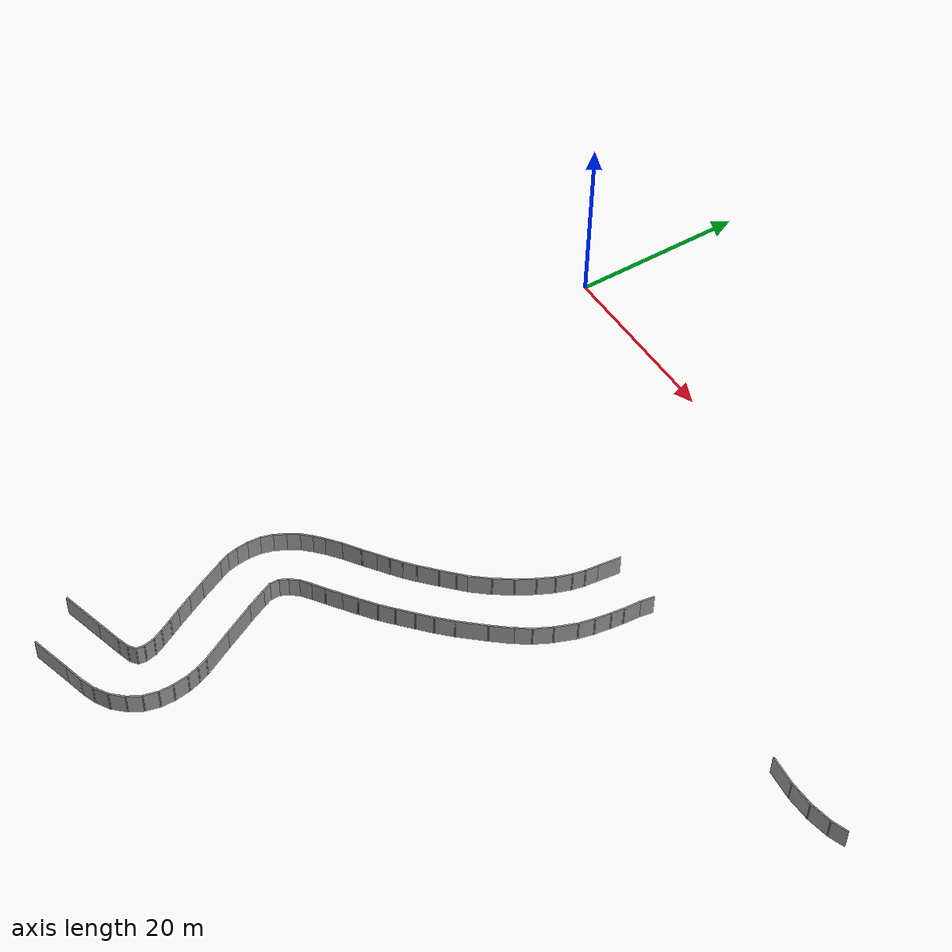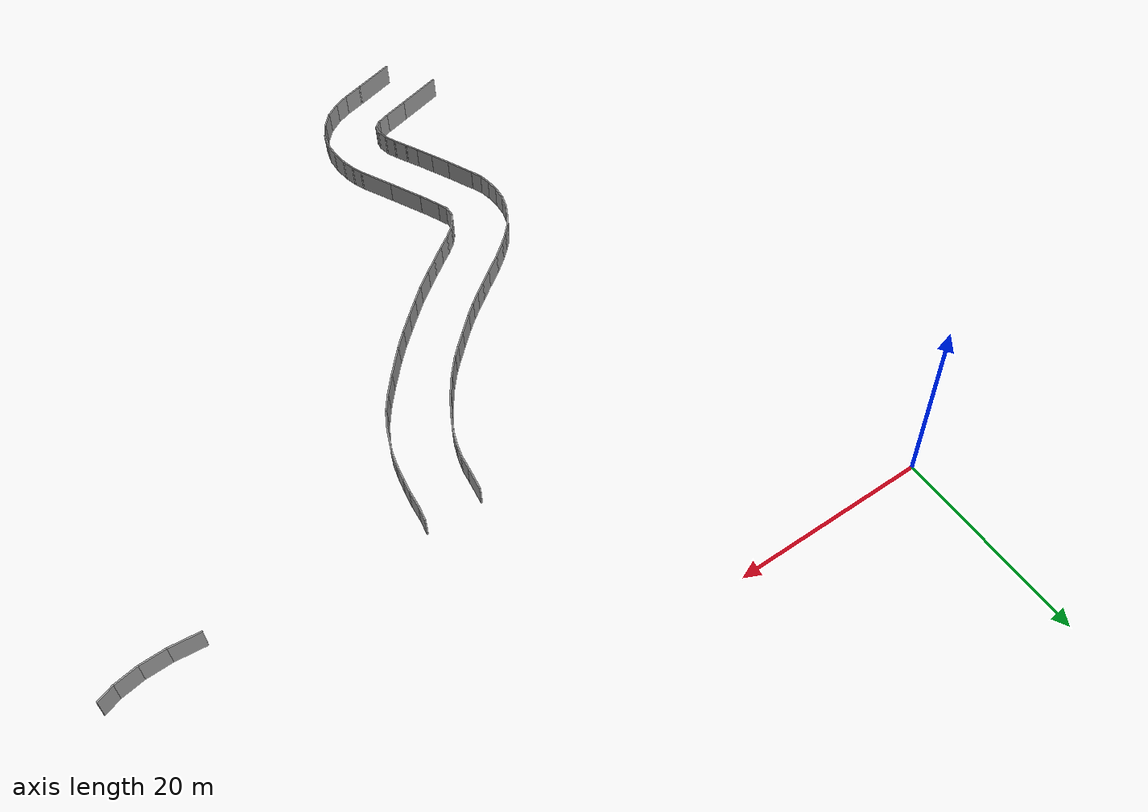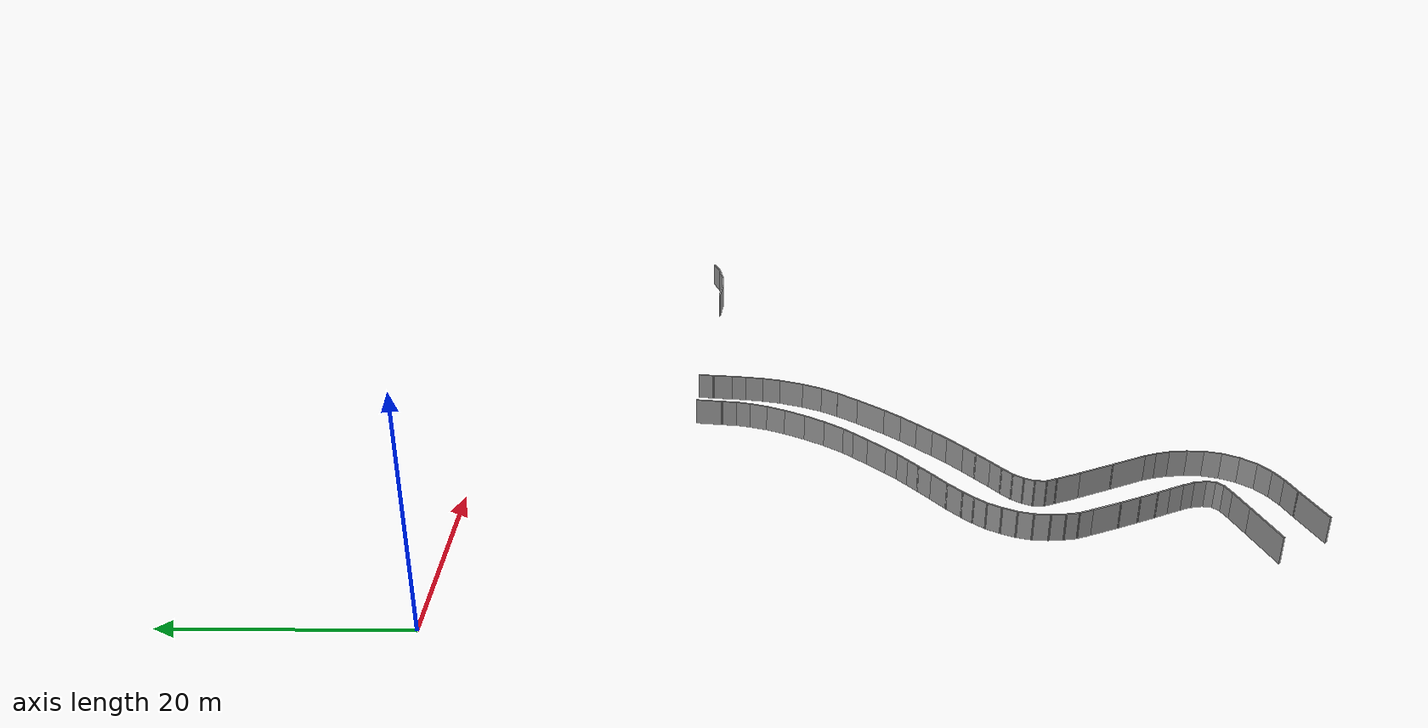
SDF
<sdf version="1.6">
 <model name="pista_l">
  <pose>-4.26084 -21.2973 0 0 -0 0</pose>
  <link name="Wall_100">
   <collision name="Wall_100_Collision">
    <geometry><box><size>2.40835 0.15 2.5</size></box></geometry>
    <pose>0 0 1.25 0 -0 0</pose>
   </collision>
   <visual name="Wall_100_Visual">
    <pose>0 0 1.25 0 -0 0</pose>
    <geometry><box><size>2.40835 0.15 2.5</size></box></geometry>
    <material>
     <script><uri>file://media/materials/scripts/gazebo.material</uri><name>Gazebo/Grey</name></script>
     <ambient>1 1 1 1</ambient>
    </material>
    <meta><layer>0</layer></meta>
   </visual>
   <pose>29.8719 -15.2686 0 0 0 -2.38952</pose>
  </link>
  <link name="Wall_101">
   <collision name="Wall_101_Collision">
    <geometry><box><size>1.62145 0.15 2.5</size></box></geometry>
    <pose>0 0 1.25 0 -0 0</pose>
   </collision>
   <visual name="Wall_101_Visual">
    <pose>0 0 1.25 0 -0 0</pose>
    <geometry><box><size>1.62145 0.15 2.5</size></box></geometry>
    <material>
     <script><uri>file://media/materials/scripts/gazebo.material</uri><name>Gazebo/Grey</name></script>
     <ambient>1 1 1 1</ambient>
    </material>
    <meta><layer>0</layer></meta>
   </visual>
   <pose>28.4887 -16.5188 0 0 0 -2.43297</pose>
  </link>
  <link name="Wall_102">
   <collision name="Wall_102_Collision">
    <geometry><box><size>1.49614 0.15 2.5</size></box></geometry>
    <pose>0 0 1.25 0 -0 0</pose>
   </collision>
   <visual name="Wall_102_Visual">
    <pose>0 0 1.25 0 -0 0</pose>
    <geometry><box><size>1.49614 0.15 2.5</size></box></geometry>
    <material>
     <script><uri>file://media/materials/scripts/gazebo.material</uri><name>Gazebo/Grey</name></script>
     <ambient>1 1 1 1</ambient>
    </material>
    <meta><layer>0</layer></meta>
   </visual>
   <pose>27.3981 -17.4099 0 0 0 -2.48228</pose>
  </link>
  <link name="Wall_103">
   <collision name="Wall_103_Collision">
    <geometry><box><size>1.53857 0.15 2.5</size></box></geometry>
    <pose>0 0 1.25 0 -0 0</pose>
   </collision>
   <visual name="Wall_103_Visual">
    <pose>0 0 1.25 0 -0 0</pose>
    <geometry><box><size>1.53857 0.15 2.5</size></box></geometry>
    <material>
     <script><uri>file://media/materials/scripts/gazebo.material</uri><name>Gazebo/Grey</name></script>
     <ambient>1 1 1 1</ambient>
    </material>
    <meta><layer>0</layer></meta>
   </visual>
   <pose>26.3075 -18.2345 0 0 0 -2.50575</pose>
  </link>
  <link name="Wall_104">
   <collision name="Wall_104_Collision">
    <geometry><box><size>1.80457 0.15 2.5</size></box></geometry>
    <pose>0 0 1.25 0 -0 0</pose>
   </collision>
   <visual name="Wall_104_Visual">
    <pose>0 0 1.25 0 -0 0</pose>
    <geometry><box><size>1.80457 0.15 2.5</size></box></geometry>
    <material>
     <script><uri>file://media/materials/scripts/gazebo.material</uri><name>Gazebo/Grey</name></script>
     <ambient>1 1 1 1</ambient>
    </material>
    <meta><layer>0</layer></meta>
   </visual>
   <pose>25.0839 -19.1389 0 0 0 -2.50452</pose>
  </link>
  <link name="Wall_105">
   <collision name="Wall_105_Collision">
    <geometry><box><size>2.23111 0.15 2.5</size></box></geometry>
    <pose>0 0 1.25 0 -0 0</pose>
   </collision>
   <visual name="Wall_105_Visual">
    <pose>0 0 1.25 0 -0 0</pose>
    <geometry><box><size>2.23111 0.15 2.5</size></box></geometry>
    <material>
     <script><uri>file://media/materials/scripts/gazebo.material</uri><name>Gazebo/Grey</name></script>
     <ambient>1 1 1 1</ambient>
    </material>
    <meta><layer>0</layer></meta>
   </visual>
   <pose>23.5677 -20.2295 0 0 0 -2.52877</pose>
  </link>
  <link name="Wall_106">
   <collision name="Wall_106_Collision">
    <geometry><box><size>1.96545 0.15 2.5</size></box></geometry>
    <pose>0 0 1.25 0 -0 0</pose>
   </collision>
   <visual name="Wall_106_Visual">
    <pose>0 0 1.25 0 -0 0</pose>
    <geometry><box><size>1.96545 0.15 2.5</size></box></geometry>
    <material>
     <script><uri>file://media/materials/scripts/gazebo.material</uri><name>Gazebo/Grey</name></script>
     <ambient>1 1 1 1</ambient>
    </material>
    <meta><layer>0</layer></meta>
   </visual>
   <pose>22.0116 -21.4 0 0 0 -2.45999</pose>
  </link>
  <link name="Wall_107">
   <collision name="Wall_107_Collision">
    <geometry><box><size>1.41148 0.15 2.5</size></box></geometry>
    <pose>0 0 1.25 0 -0 0</pose>
   </collision>
   <visual name="Wall_107_Visual">
    <pose>0 0 1.25 0 -0 0</pose>
    <geometry><box><size>1.41148 0.15 2.5</size></box></geometry>
    <material>
     <script><uri>file://media/materials/scripts/gazebo.material</uri><name>Gazebo/Grey</name></script>
     <ambient>1 1 1 1</ambient>
    </material>
    <meta><layer>0</layer></meta>
   </visual>
   <pose>20.8412 -22.3975 0 0 0 -2.40094</pose>
  </link>
  <link name="Wall_108">
   <collision name="Wall_108_Collision">
    <geometry><box><size>1.46718 0.15 2.5</size></box></geometry>
    <pose>0 0 1.25 0 -0 0</pose>
   </collision>
   <visual name="Wall_108_Visual">
    <pose>0 0 1.25 0 -0 0</pose>
    <geometry><box><size>1.46718 0.15 2.5</size></box></geometry>
    <material>
     <script><uri>file://media/materials/scripts/gazebo.material</uri><name>Gazebo/Grey</name></script>
     <ambient>1 1 1 1</ambient>
    </material>
    <meta><layer>0</layer></meta>
   </visual>
   <pose>19.9235 -23.3019 0 0 0 -2.32763</pose>
  </link>
  <link name="Wall_109">
   <collision name="Wall_109_Collision">
    <geometry><box><size>1.51493 0.15 2.5</size></box></geometry>
    <pose>0 0 1.25 0 -0 0</pose>
   </collision>
   <visual name="Wall_109_Visual">
    <pose>0 0 1.25 0 -0 0</pose>
    <geometry><box><size>1.51493 0.15 2.5</size></box></geometry>
    <material>
     <script><uri>file://media/materials/scripts/gazebo.material</uri><name>Gazebo/Grey</name></script>
     <ambient>1 1 1 1</ambient>
    </material>
    <meta><layer>0</layer></meta>
   </visual>
   <pose>19.0989 -24.3526 0 0 0 -2.14799</pose>
  </link>
  <link name="Wall_110">
   <collision name="Wall_110_Collision">
    <geometry><box><size>1.4943 0.15 2.5</size></box></geometry>
    <pose>0 0 1.25 0 -0 0</pose>
   </collision>
   <visual name="Wall_110_Visual">
    <pose>0 0 1.25 0 -0 0</pose>
    <geometry><box><size>1.4943 0.15 2.5</size></box></geometry>
    <material>
     <script><uri>file://media/materials/scripts/gazebo.material</uri><name>Gazebo/Grey</name></script>
     <ambient>1 1 1 1</ambient>
    </material>
    <meta><layer>0</layer></meta>
   </visual>
   <pose>18.4205 -25.523 0 0 0 -2.04329</pose>
  </link>
  <link name="Wall_111">
   <collision name="Wall_111_Collision">
    <geometry><box><size>1.48001 0.15 2.5</size></box></geometry>
    <pose>0 0 1.25 0 -0 0</pose>
   </collision>
   <visual name="Wall_111_Visual">
    <pose>0 0 1.25 0 -0 0</pose>
    <geometry><box><size>1.48001 0.15 2.5</size></box></geometry>
    <material>
     <script><uri>file://media/materials/scripts/gazebo.material</uri><name>Gazebo/Grey</name></script>
     <ambient>1 1 1 1</ambient>
    </material>
    <meta><layer>0</layer></meta>
   </visual>
   <pose>17.9284 -26.7599 0 0 0 -1.85459</pose>
  </link>
  <link name="Wall_112">
   <collision name="Wall_112_Collision">
    <geometry><box><size>1.5373 0.15 2.5</size></box></geometry>
    <pose>0 0 1.25 0 -0 0</pose>
   </collision>
   <visual name="Wall_112_Visual">
    <pose>0 0 1.25 0 -0 0</pose>
    <geometry><box><size>1.5373 0.15 2.5</size></box></geometry>
    <material>
     <script><uri>file://media/materials/scripts/gazebo.material</uri><name>Gazebo/Grey</name></script>
     <ambient>1 1 1 1</ambient>
    </material>
    <meta><layer>0</layer></meta>
   </visual>
   <pose>17.689 -28.0899 0 0 0 -1.64757</pose>
  </link>
  <link name="Wall_113">
   <collision name="Wall_113_Collision">
    <geometry><box><size>1.43124 0.15 2.5</size></box></geometry>
    <pose>0 0 1.25 0 -0 0</pose>
   </collision>
   <visual name="Wall_113_Visual">
    <pose>0 0 1.25 0 -0 0</pose>
    <geometry><box><size>1.43124 0.15 2.5</size></box></geometry>
    <material>
     <script><uri>file://media/materials/scripts/gazebo.material</uri><name>Gazebo/Grey</name></script>
     <ambient>1 1 1 1</ambient>
    </material>
    <meta><layer>0</layer></meta>
   </visual>
   <pose>17.689 -29.4199 0 0 0 -1.48765</pose>
  </link>
  <link name="Wall_114">
   <collision name="Wall_114_Collision">
    <geometry><box><size>1.31344 0.15 2.5</size></box></geometry>
    <pose>0 0 1.25 0 -0 0</pose>
   </collision>
   <visual name="Wall_114_Visual">
    <pose>0 0 1.25 0 -0 0</pose>
    <geometry><box><size>1.31344 0.15 2.5</size></box></geometry>
    <material>
     <script><uri>file://media/materials/scripts/gazebo.material</uri><name>Gazebo/Grey</name></script>
     <ambient>1 1 1 1</ambient>
    </material>
    <meta><layer>0</layer></meta>
   </visual>
   <pose>17.8486 -30.6302 0 0 0 -1.38685</pose>
  </link>
  <link name="Wall_115">
   <collision name="Wall_115_Collision">
    <geometry><box><size>1.41456 0.15 2.5</size></box></geometry>
    <pose>0 0 1.25 0 -0 0</pose>
   </collision>
   <visual name="Wall_115_Visual">
    <pose>0 0 1.25 0 -0 0</pose>
    <geometry><box><size>1.41456 0.15 2.5</size></box></geometry>
    <material>
     <script><uri>file://media/materials/scripts/gazebo.material</uri><name>Gazebo/Grey</name></script>
     <ambient>1 1 1 1</ambient>
    </material>
    <meta><layer>0</layer></meta>
   </visual>
   <pose>18.1944 -31.7873 0 0 0 -1.18248</pose>
  </link>
  <link name="Wall_117">
   <collision name="Wall_117_Collision">
    <geometry><box><size>2.62611 0.15 2.5</size></box></geometry>
    <pose>0 0 1.25 0 -0 0</pose>
   </collision>
   <visual name="Wall_117_Visual">
    <pose>0 0 1.25 0 -0 0</pose>
    <geometry><box><size>2.62611 0.15 2.5</size></box></geometry>
    <material>
     <script><uri>file://media/materials/scripts/gazebo.material</uri><name>Gazebo/Grey</name></script>
     <ambient>1 1 1 1</ambient>
    </material>
    <meta><layer>0</layer></meta>
   </visual>
   <pose>39.6475 -13.114 0 0 0 -2.25728</pose>
  </link>
  <link name="Wall_118">
   <collision name="Wall_118_Collision">
    <geometry><box><size>3.37302 0.15 2.5</size></box></geometry>
    <pose>0 0 1.25 0 -0 0</pose>
   </collision>
   <visual name="Wall_118_Visual">
    <pose>0 0 1.25 0 -0 0</pose>
    <geometry><box><size>3.37302 0.15 2.5</size></box></geometry>
    <material>
     <script><uri>file://media/materials/scripts/gazebo.material</uri><name>Gazebo/Grey</name></script>
     <ambient>1 1 1 1</ambient>
    </material>
    <meta><layer>0</layer></meta>
   </visual>
   <pose>37.7988 -15.2819 0 0 0 -2.29196</pose>
  </link>
  <link name="Wall_119">
   <collision name="Wall_119_Collision">
    <geometry><box><size>2.20029 0.15 2.5</size></box></geometry>
    <pose>0 0 1.25 0 -0 0</pose>
   </collision>
   <visual name="Wall_119_Visual">
    <pose>0 0 1.25 0 -0 0</pose>
    <geometry><box><size>2.20029 0.15 2.5</size></box></geometry>
    <material>
     <script><uri>file://media/materials/scripts/gazebo.material</uri><name>Gazebo/Grey</name></script>
     <ambient>1 1 1 1</ambient>
    </material>
    <meta><layer>0</layer></meta>
   </visual>
   <pose>36.0166 -17.2237 0 0 0 -2.34702</pose>
  </link>
  <link name="Wall_120">
   <collision name="Wall_120_Collision">
    <geometry><box><size>2.1076 0.15 2.5</size></box></geometry>
    <pose>0 0 1.25 0 -0 0</pose>
   </collision>
   <visual name="Wall_120_Visual">
    <pose>0 0 1.25 0 -0 0</pose>
    <geometry><box><size>2.1076 0.15 2.5</size></box></geometry>
    <material>
     <script><uri>file://media/materials/scripts/gazebo.material</uri><name>Gazebo/Grey</name></script>
     <ambient>1 1 1 1</ambient>
    </material>
    <meta><layer>0</layer></meta>
   </visual>
   <pose>34.5802 -18.6202 0 0 0 -2.39464</pose>
  </link>
  <link name="Wall_121">
   <collision name="Wall_121_Collision">
    <geometry><box><size>2.1272 0.15 2.5</size></box></geometry>
    <pose>0 0 1.25 0 -0 0</pose>
   </collision>
   <visual name="Wall_121_Visual">
    <pose>0 0 1.25 0 -0 0</pose>
    <geometry><box><size>2.1272 0.15 2.5</size></box></geometry>
    <material>
     <script><uri>file://media/materials/scripts/gazebo.material</uri><name>Gazebo/Grey</name></script>
     <ambient>1 1 1 1</ambient>
    </material>
    <meta><layer>0</layer></meta>
   </visual>
   <pose>33.1305 -19.9502 0 0 0 -2.40378</pose>
  </link>
  <link name="Wall_122">
   <collision name="Wall_122_Collision">
    <geometry><box><size>1.92166 0.15 2.5</size></box></geometry>
    <pose>0 0 1.25 0 -0 0</pose>
   </collision>
   <visual name="Wall_122_Visual">
    <pose>0 0 1.25 0 -0 0</pose>
    <geometry><box><size>1.92166 0.15 2.5</size></box></geometry>
    <material>
     <script><uri>file://media/materials/scripts/gazebo.material</uri><name>Gazebo/Grey</name></script>
     <ambient>1 1 1 1</ambient>
    </material>
    <meta><layer>0</layer></meta>
   </visual>
   <pose>31.7339 -21.2005 0 0 0 -2.41994</pose>
  </link>
  <link name="Wall_123">
   <collision name="Wall_123_Collision">
    <geometry><box><size>2.2357 0.15 2.5</size></box></geometry>
    <pose>0 0 1.25 0 -0 0</pose>
   </collision>
   <visual name="Wall_123_Visual">
    <pose>0 0 1.25 0 -0 0</pose>
    <geometry><box><size>2.2357 0.15 2.5</size></box></geometry>
    <material>
     <script><uri>file://media/materials/scripts/gazebo.material</uri><name>Gazebo/Grey</name></script>
     <ambient>1 1 1 1</ambient>
    </material>
    <meta><layer>0</layer></meta>
   </visual>
   <pose>30.2443 -22.4241 0 0 0 -2.48279</pose>
  </link>
  <link name="Wall_124">
   <collision name="Wall_124_Collision">
    <geometry><box><size>1.76737 0.15 2.5</size></box></geometry>
    <pose>0 0 1.25 0 -0 0</pose>
   </collision>
   <visual name="Wall_124_Visual">
    <pose>0 0 1.25 0 -0 0</pose>
    <geometry><box><size>1.76737 0.15 2.5</size></box></geometry>
    <material>
     <script><uri>file://media/materials/scripts/gazebo.material</uri><name>Gazebo/Grey</name></script>
     <ambient>1 1 1 1</ambient>
    </material>
    <meta><layer>0</layer></meta>
   </visual>
   <pose>28.768 -23.5413 0 0 0 -2.50796</pose>
  </link>
  <link name="Wall_125">
   <collision name="Wall_125_Collision">
    <geometry><box><size>1.97478 0.15 2.5</size></box></geometry>
    <pose>0 0 1.25 0 -0 0</pose>
   </collision>
   <visual name="Wall_125_Visual">
    <pose>0 0 1.25 0 -0 0</pose>
    <geometry><box><size>1.97478 0.15 2.5</size></box></geometry>
    <material>
     <script><uri>file://media/materials/scripts/gazebo.material</uri><name>Gazebo/Grey</name></script>
     <ambient>1 1 1 1</ambient>
    </material>
    <meta><layer>0</layer></meta>
   </visual>
   <pose>27.3848 -24.5654 0 0 0 -2.50101</pose>
  </link>
  <link name="Wall_126">
   <collision name="Wall_126_Collision">
    <geometry><box><size>1.60355 0.15 2.5</size></box></geometry>
    <pose>0 0 1.25 0 -0 0</pose>
   </collision>
   <visual name="Wall_126_Visual">
    <pose>0 0 1.25 0 -0 0</pose>
    <geometry><box><size>1.60355 0.15 2.5</size></box></geometry>
    <material>
     <script><uri>file://media/materials/scripts/gazebo.material</uri><name>Gazebo/Grey</name></script>
     <ambient>1 1 1 1</ambient>
    </material>
    <meta><layer>0</layer></meta>
   </visual>
   <pose>26.0548 -25.523 0 0 0 -2.53836</pose>
  </link>
  <link name="Wall_127">
   <collision name="Wall_127_Collision">
    <geometry><box><size>1.43785 0.15 2.5</size></box></geometry>
    <pose>0 0 1.25 0 -0 0</pose>
   </collision>
   <visual name="Wall_127_Visual">
    <pose>0 0 1.25 0 -0 0</pose>
    <geometry><box><size>1.43785 0.15 2.5</size></box></geometry>
    <material>
     <script><uri>file://media/materials/scripts/gazebo.material</uri><name>Gazebo/Grey</name></script>
     <ambient>1 1 1 1</ambient>
    </material>
    <meta><layer>0</layer></meta>
   </visual>
   <pose>24.9509 -26.3343 0 0 0 -2.4733</pose>
  </link>
  <link name="Wall_128">
   <collision name="Wall_128_Collision">
    <geometry><box><size>1.24675 0.15 2.5</size></box></geometry>
    <pose>0 0 1.25 0 -0 0</pose>
   </collision>
   <visual name="Wall_128_Visual">
    <pose>0 0 1.25 0 -0 0</pose>
    <geometry><box><size>1.24675 0.15 2.5</size></box></geometry>
    <material>
     <script><uri>file://media/materials/scripts/gazebo.material</uri><name>Gazebo/Grey</name></script>
     <ambient>1 1 1 1</ambient>
    </material>
    <meta><layer>0</layer></meta>
   </visual>
   <pose>24.0997 -27.1589 0 0 0 -2.25311</pose>
  </link>
  <link name="Wall_129">
   <collision name="Wall_129_Collision">
    <geometry><box><size>1.10168 0.15 2.5</size></box></geometry>
    <pose>0 0 1.25 0 -0 0</pose>
   </collision>
   <visual name="Wall_129_Visual">
    <pose>0 0 1.25 0 -0 0</pose>
    <geometry><box><size>1.10168 0.15 2.5</size></box></geometry>
    <material>
     <script><uri>file://media/materials/scripts/gazebo.material</uri><name>Gazebo/Grey</name></script>
     <ambient>1 1 1 1</ambient>
    </material>
    <meta><layer>0</layer></meta>
   </visual>
   <pose>23.5411 -28.0101 0 0 0 -2.03444</pose>
  </link>
  <link name="Wall_130">
   <collision name="Wall_130_Collision">
    <geometry><box><size>1.16116 0.15 2.5</size></box></geometry>
    <pose>0 0 1.25 0 -0 0</pose>
   </collision>
   <visual name="Wall_130_Visual">
    <pose>0 0 1.25 0 -0 0</pose>
    <geometry><box><size>1.16116 0.15 2.5</size></box></geometry>
    <material>
     <script><uri>file://media/materials/scripts/gazebo.material</uri><name>Gazebo/Grey</name></script>
     <ambient>1 1 1 1</ambient>
    </material>
    <meta><layer>0</layer></meta>
   </visual>
   <pose>23.315 -28.9411 0 0 0 -1.59711</pose>
  </link>
  <link name="Wall_131">
   <collision name="Wall_131_Collision">
    <geometry><box><size>1.16291 0.15 2.5</size></box></geometry>
    <pose>0 0 1.25 0 -0 0</pose>
   </collision>
   <visual name="Wall_131_Visual">
    <pose>0 0 1.25 0 -0 0</pose>
    <geometry><box><size>1.16291 0.15 2.5</size></box></geometry>
    <material>
     <script><uri>file://media/materials/scripts/gazebo.material</uri><name>Gazebo/Grey</name></script>
     <ambient>1 1 1 1</ambient>
    </material>
    <meta><layer>0</layer></meta>
   </visual>
   <pose>23.5012 -29.912 0 0 0 -1.1659</pose>
  </link>
  <link name="Wall_132">
   <collision name="Wall_132_Collision">
    <geometry><box><size>2.50783 0.15 2.5</size></box></geometry>
    <pose>0 0 1.25 0 -0 0</pose>
   </collision>
   <visual name="Wall_132_Visual">
    <pose>0 0 1.25 0 -0 0</pose>
    <geometry><box><size>2.50783 0.15 2.5</size></box></geometry>
    <material>
     <script><uri>file://media/materials/scripts/gazebo.material</uri><name>Gazebo/Grey</name></script>
     <ambient>1 1 1 1</ambient>
    </material>
    <meta><layer>0</layer></meta>
   </visual>
   <pose>24.1795 -31.4548 0 0 0 -1.15257</pose>
  </link>
  <link name="Wall_134">
   <collision name="Wall_134_Collision">
    <geometry><box><size>3.0427 0.15 2.5</size></box></geometry>
    <pose>0 0 1.25 0 -0 0</pose>
   </collision>
   <visual name="Wall_134_Visual">
    <pose>0 0 1.25 0 -0 0</pose>
    <geometry><box><size>3.0427 0.15 2.5</size></box></geometry>
    <material>
     <script><uri>file://media/materials/scripts/gazebo.material</uri><name>Gazebo/Grey</name></script>
     <ambient>1 1 1 1</ambient>
    </material>
    <meta><layer>0</layer></meta>
   </visual>
   <pose>19.059 -33.6893 0 0 0 -1.14417</pose>
  </link>
  <link name="Wall_135">
   <collision name="Wall_135_Collision">
    <geometry><box><size>2.22004 0.15 2.5</size></box></geometry>
    <pose>0 0 1.25 0 -0 0</pose>
   </collision>
   <visual name="Wall_135_Visual">
    <pose>0 0 1.25 0 -0 0</pose>
    <geometry><box><size>2.22004 0.15 2.5</size></box></geometry>
    <material>
     <script><uri>file://media/materials/scripts/gazebo.material</uri><name>Gazebo/Grey</name></script>
     <ambient>1 1 1 1</ambient>
    </material>
    <meta><layer>0</layer></meta>
   </visual>
   <pose>20.1097 -35.937 0 0 0 -1.11864</pose>
  </link>
  <link name="Wall_136">
   <collision name="Wall_136_Collision">
    <geometry><box><size>2.0177 0.15 2.5</size></box></geometry>
    <pose>0 0 1.25 0 -0 0</pose>
   </collision>
   <visual name="Wall_136_Visual">
    <pose>0 0 1.25 0 -0 0</pose>
    <geometry><box><size>2.0177 0.15 2.5</size></box></geometry>
    <material>
     <script><uri>file://media/materials/scripts/gazebo.material</uri><name>Gazebo/Grey</name></script>
     <ambient>1 1 1 1</ambient>
    </material>
    <meta><layer>0</layer></meta>
   </visual>
   <pose>20.9742 -37.7059 0 0 0 -1.11352</pose>
  </link>
  <link name="Wall_137">
   <collision name="Wall_137_Collision">
    <geometry><box><size>1.53014 0.15 2.5</size></box></geometry>
    <pose>0 0 1.25 0 -0 0</pose>
   </collision>
   <visual name="Wall_137_Visual">
    <pose>0 0 1.25 0 -0 0</pose>
    <geometry><box><size>1.53014 0.15 2.5</size></box></geometry>
    <material>
     <script><uri>file://media/materials/scripts/gazebo.material</uri><name>Gazebo/Grey</name></script>
     <ambient>1 1 1 1</ambient>
    </material>
    <meta><layer>0</layer></meta>
   </visual>
   <pose>21.7057 -39.1556 0 0 0 -1.08991</pose>
  </link>
  <link name="Wall_138">
   <collision name="Wall_138_Collision">
    <geometry><box><size>1.61325 0.15 2.5</size></box></geometry>
    <pose>0 0 1.25 0 -0 0</pose>
   </collision>
   <visual name="Wall_138_Visual">
    <pose>0 0 1.25 0 -0 0</pose>
    <geometry><box><size>1.61325 0.15 2.5</size></box></geometry>
    <material>
     <script><uri>file://media/materials/scripts/gazebo.material</uri><name>Gazebo/Grey</name></script>
     <ambient>1 1 1 1</ambient>
    </material>
    <meta><layer>0</layer></meta>
   </visual>
   <pose>22.3574 -40.4191 0 0 0 -1.09902</pose>
  </link>
  <link name="Wall_139">
   <collision name="Wall_139_Collision">
    <geometry><box><size>1.31678 0.15 2.5</size></box></geometry>
    <pose>0 0 1.25 0 -0 0</pose>
   </collision>
   <visual name="Wall_139_Visual">
    <pose>0 0 1.25 0 -0 0</pose>
    <geometry><box><size>1.31678 0.15 2.5</size></box></geometry>
    <material>
     <script><uri>file://media/materials/scripts/gazebo.material</uri><name>Gazebo/Grey</name></script>
     <ambient>1 1 1 1</ambient>
    </material>
    <meta><layer>0</layer></meta>
   </visual>
   <pose>22.9293 -41.6028 0 0 0 -1.14794</pose>
  </link>
  <link name="Wall_140">
   <collision name="Wall_140_Collision">
    <geometry><box><size>1.2873 0.15 2.5</size></box></geometry>
    <pose>0 0 1.25 0 -0 0</pose>
   </collision>
   <visual name="Wall_140_Visual">
    <pose>0 0 1.25 0 -0 0</pose>
    <geometry><box><size>1.2873 0.15 2.5</size></box></geometry>
    <material>
     <script><uri>file://media/materials/scripts/gazebo.material</uri><name>Gazebo/Grey</name></script>
     <ambient>1 1 1 1</ambient>
    </material>
    <meta><layer>0</layer></meta>
   </visual>
   <pose>23.2751 -42.6934 0 0 0 -1.38258</pose>
  </link>
  <link name="Wall_141">
   <collision name="Wall_141_Collision">
    <geometry><box><size>0.959013 0.15 2.5</size></box></geometry>
    <pose>0 0 1.25 0 -0 0</pose>
   </collision>
   <visual name="Wall_141_Visual">
    <pose>0 0 1.25 0 -0 0</pose>
    <geometry><box><size>0.959013 0.15 2.5</size></box></geometry>
    <material>
     <script><uri>file://media/materials/scripts/gazebo.material</uri><name>Gazebo/Grey</name></script>
     <ambient>1 1 1 1</ambient>
    </material>
    <meta><layer>0</layer></meta>
   </visual>
   <pose>23.315 -43.651 0 0 0 -1.73595</pose>
  </link>
  <link name="Wall_142">
   <collision name="Wall_142_Collision">
    <geometry><box><size>1.00162 0.15 2.5</size></box></geometry>
    <pose>0 0 1.25 0 -0 0</pose>
   </collision>
   <visual name="Wall_142_Visual">
    <pose>0 0 1.25 0 -0 0</pose>
    <geometry><box><size>1.00162 0.15 2.5</size></box></geometry>
    <material>
     <script><uri>file://media/materials/scripts/gazebo.material</uri><name>Gazebo/Grey</name></script>
     <ambient>1 1 1 1</ambient>
    </material>
    <meta><layer>0</layer></meta>
   </visual>
   <pose>22.916 -44.316 0 0 0 -2.46685</pose>
  </link>
  <link name="Wall_143">
   <collision name="Wall_143_Collision">
    <geometry><box><size>1.41176 0.15 2.5</size></box></geometry>
    <pose>0 0 1.25 0 -0 0</pose>
   </collision>
   <visual name="Wall_143_Visual">
    <pose>0 0 1.25 0 -0 0</pose>
    <geometry><box><size>1.41176 0.15 2.5</size></box></geometry>
    <material>
     <script><uri>file://media/materials/scripts/gazebo.material</uri><name>Gazebo/Grey</name></script>
     <ambient>1 1 1 1</ambient>
    </material>
    <meta><layer>0</layer></meta>
   </visual>
   <pose>21.985 -44.7815 0 0 0 -2.81984</pose>
  </link>
  <link name="Wall_144">
   <collision name="Wall_144_Collision">
    <geometry><box><size>2.82831 0.15 2.5</size></box></geometry>
    <pose>0 0 1.25 0 -0 0</pose>
   </collision>
   <visual name="Wall_144_Visual">
    <pose>0 0 1.25 0 -0 0</pose>
    <geometry><box><size>2.82831 0.15 2.5</size></box></geometry>
    <material>
     <script><uri>file://media/materials/scripts/gazebo.material</uri><name>Gazebo/Grey</name></script>
     <ambient>1 1 1 1</ambient>
    </material>
    <meta><layer>0</layer></meta>
   </visual>
   <pose>20.0964 -45.3401 0 0 0 -2.87011</pose>
  </link>
  <link name="Wall_145">
   <collision name="Wall_145_Collision">
    <geometry><box><size>4.81604 0.15 2.5</size></box></geometry>
    <pose>0 0 1.25 0 -0 0</pose>
   </collision>
   <visual name="Wall_145_Visual">
    <pose>0 0 1.25 0 -0 0</pose>
    <geometry><box><size>4.81604 0.15 2.5</size></box></geometry>
    <material>
     <script><uri>file://media/materials/scripts/gazebo.material</uri><name>Gazebo/Grey</name></script>
     <ambient>1 1 1 1</ambient>
    </material>
    <meta><layer>0</layer></meta>
   </visual>
   <pose>16.5585 -46.3243 0 0 0 -2.87034</pose>
  </link>
  <link name="Wall_162">
   <collision name="Wall_162_Collision">
    <geometry><box><size>3.76645 0.15 2.5</size></box></geometry>
    <pose>0 0 1.25 0 -0 0</pose>
   </collision>
   <visual name="Wall_162_Visual">
    <pose>0 0 1.25 0 -0 0</pose>
    <geometry><box><size>3.76645 0.15 2.5</size></box></geometry>
    <material>
     <script><uri>file://media/materials/scripts/gazebo.material</uri><name>Gazebo/Grey</name></script>
     <ambient>1 1 1 1</ambient>
    </material>
    <meta><layer>0</layer></meta>
   </visual>
   <pose>25.4829 -34.1548 0 0 0 -1.11373</pose>
  </link>
  <link name="Wall_163">
   <collision name="Wall_163_Collision">
    <geometry><box><size>3.81398 0.15 2.5</size></box></geometry>
    <pose>0 0 1.25 0 -0 0</pose>
   </collision>
   <visual name="Wall_163_Visual">
    <pose>0 0 1.25 0 -0 0</pose>
    <geometry><box><size>3.81398 0.15 2.5</size></box></geometry>
    <material>
     <script><uri>file://media/materials/scripts/gazebo.material</uri><name>Gazebo/Grey</name></script>
     <ambient>1 1 1 1</ambient>
    </material>
    <meta><layer>0</layer></meta>
   </visual>
   <pose>27.1055 -37.4133 0 0 0 -1.1039</pose>
  </link>
  <link name="Wall_164">
   <collision name="Wall_164_Collision">
    <geometry><box><size>1.32071 0.15 2.5</size></box></geometry>
    <pose>0 0 1.25 0 -0 0</pose>
   </collision>
   <visual name="Wall_164_Visual">
    <pose>0 0 1.25 0 -0 0</pose>
    <geometry><box><size>1.32071 0.15 2.5</size></box></geometry>
    <material>
     <script><uri>file://media/materials/scripts/gazebo.material</uri><name>Gazebo/Grey</name></script>
     <ambient>1 1 1 1</ambient>
    </material>
    <meta><layer>0</layer></meta>
   </visual>
   <pose>28.1429 -39.5945 0 0 0 -1.19873</pose>
  </link>
  <link name="Wall_165">
   <collision name="Wall_165_Collision">
    <geometry><box><size>1.47281 0.15 2.5</size></box></geometry>
    <pose>0 0 1.25 0 -0 0</pose>
   </collision>
   <visual name="Wall_165_Visual">
    <pose>0 0 1.25 0 -0 0</pose>
    <geometry><box><size>1.47281 0.15 2.5</size></box></geometry>
    <material>
     <script><uri>file://media/materials/scripts/gazebo.material</uri><name>Gazebo/Grey</name></script>
     <ambient>1 1 1 1</ambient>
    </material>
    <meta><layer>0</layer></meta>
   </visual>
   <pose>28.5286 -40.7782 0 0 0 -1.30631</pose>
  </link>
  <link name="Wall_166">
   <collision name="Wall_166_Collision">
    <geometry><box><size>1.80969 0.15 2.5</size></box></geometry>
    <pose>0 0 1.25 0 -0 0</pose>
   </collision>
   <visual name="Wall_166_Visual">
    <pose>0 0 1.25 0 -0 0</pose>
    <geometry><box><size>1.80969 0.15 2.5</size></box></geometry>
    <material>
     <script><uri>file://media/materials/scripts/gazebo.material</uri><name>Gazebo/Grey</name></script>
     <ambient>1 1 1 1</ambient>
    </material>
    <meta><layer>0</layer></meta>
   </visual>
   <pose>28.7946 -42.2412 0 0 0 -1.45837</pose>
  </link>
  <link name="Wall_167">
   <collision name="Wall_167_Collision">
    <geometry><box><size>1.66714 0.15 2.5</size></box></geometry>
    <pose>0 0 1.25 0 -0 0</pose>
   </collision>
   <visual name="Wall_167_Visual">
    <pose>0 0 1.25 0 -0 0</pose>
    <geometry><box><size>1.66714 0.15 2.5</size></box></geometry>
    <material>
     <script><uri>file://media/materials/scripts/gazebo.material</uri><name>Gazebo/Grey</name></script>
     <ambient>1 1 1 1</ambient>
    </material>
    <meta><layer>0</layer></meta>
   </visual>
   <pose>28.8611 -43.8239 0 0 0 -1.60587</pose>
  </link>
  <link name="Wall_168">
   <collision name="Wall_168_Collision">
    <geometry><box><size>1.69212 0.15 2.5</size></box></geometry>
    <pose>0 0 1.25 0 -0 0</pose>
   </collision>
   <visual name="Wall_168_Visual">
    <pose>0 0 1.25 0 -0 0</pose>
    <geometry><box><size>1.69212 0.15 2.5</size></box></geometry>
    <material>
     <script><uri>file://media/materials/scripts/gazebo.material</uri><name>Gazebo/Grey</name></script>
     <ambient>1 1 1 1</ambient>
    </material>
    <meta><layer>0</layer></meta>
   </visual>
   <pose>28.635 -45.3268 0 0 0 -1.83251</pose>
  </link>
  <link name="Wall_169">
   <collision name="Wall_169_Collision">
    <geometry><box><size>1.73377 0.15 2.5</size></box></geometry>
    <pose>0 0 1.25 0 -0 0</pose>
   </collision>
   <visual name="Wall_169_Visual">
    <pose>0 0 1.25 0 -0 0</pose>
    <geometry><box><size>1.73377 0.15 2.5</size></box></geometry>
    <material>
     <script><uri>file://media/materials/scripts/gazebo.material</uri><name>Gazebo/Grey</name></script>
     <ambient>1 1 1 1</ambient>
    </material>
    <meta><layer>0</layer></meta>
   </visual>
   <pose>28.0498 -46.7632 0 0 0 -2.07953</pose>
  </link>
  <link name="Wall_170">
   <collision name="Wall_170_Collision">
    <geometry><box><size>1.82497 0.15 2.5</size></box></geometry>
    <pose>0 0 1.25 0 -0 0</pose>
   </collision>
   <visual name="Wall_170_Visual">
    <pose>0 0 1.25 0 -0 0</pose>
    <geometry><box><size>1.82497 0.15 2.5</size></box></geometry>
    <material>
     <script><uri>file://media/materials/scripts/gazebo.material</uri><name>Gazebo/Grey</name></script>
     <ambient>1 1 1 1</ambient>
    </material>
    <meta><layer>0</layer></meta>
   </visual>
   <pose>27.0922 -48.0667 0 0 0 -2.3225</pose>
  </link>
  <link name="Wall_171">
   <collision name="Wall_171_Collision">
    <geometry><box><size>1.81076 0.15 2.5</size></box></geometry>
    <pose>0 0 1.25 0 -0 0</pose>
   </collision>
   <visual name="Wall_171_Visual">
    <pose>0 0 1.25 0 -0 0</pose>
    <geometry><box><size>1.81076 0.15 2.5</size></box></geometry>
    <material>
     <script><uri>file://media/materials/scripts/gazebo.material</uri><name>Gazebo/Grey</name></script>
     <ambient>1 1 1 1</ambient>
    </material>
    <meta><layer>0</layer></meta>
   </visual>
   <pose>25.8154 -49.1174 0 0 0 -2.58469</pose>
  </link>
  <link name="Wall_172">
   <collision name="Wall_172_Collision">
    <geometry><box><size>1.71603 0.15 2.5</size></box></geometry>
    <pose>0 0 1.25 0 -0 0</pose>
   </collision>
   <visual name="Wall_172_Visual">
    <pose>0 0 1.25 0 -0 0</pose>
    <geometry><box><size>1.71603 0.15 2.5</size></box></geometry>
    <material>
     <script><uri>file://media/materials/scripts/gazebo.material</uri><name>Gazebo/Grey</name></script>
     <ambient>1 1 1 1</ambient>
    </material>
    <meta><layer>0</layer></meta>
   </visual>
   <pose>24.379 -49.8356 0 0 0 -2.77686</pose>
  </link>
  <link name="Wall_173">
   <collision name="Wall_173_Collision">
    <geometry><box><size>2.18904 0.15 2.5</size></box></geometry>
    <pose>0 0 1.25 0 -0 0</pose>
   </collision>
   <visual name="Wall_173_Visual">
    <pose>0 0 1.25 0 -0 0</pose>
    <geometry><box><size>2.18904 0.15 2.5</size></box></geometry>
    <material>
     <script><uri>file://media/materials/scripts/gazebo.material</uri><name>Gazebo/Grey</name></script>
     <ambient>1 1 1 1</ambient>
    </material>
    <meta><layer>0</layer></meta>
   </visual>
   <pose>22.6633 -50.3809 0 0 0 -2.87763</pose>
  </link>
  <link name="Wall_174">
   <collision name="Wall_174_Collision">
    <geometry><box><size>4.51997 0.15 2.5</size></box></geometry>
    <pose>0 0 1.25 0 -0 0</pose>
   </collision>
   <visual name="Wall_174_Visual">
    <pose>0 0 1.25 0 -0 0</pose>
    <geometry><box><size>4.51997 0.15 2.5</size></box></geometry>
    <material>
     <script><uri>file://media/materials/scripts/gazebo.material</uri><name>Gazebo/Grey</name></script>
     <ambient>1 1 1 1</ambient>
    </material>
    <meta><layer>0</layer></meta>
   </visual>
   <pose>19.5777 -51.2454 0 0 0 -2.86413</pose>
  </link>
  <link name="Wall_62">
   <collision name="Wall_62_Collision">
    <geometry><box><size>1.90904 0.15 2.5</size></box></geometry>
    <pose>0 0 1.25 0 -0 0</pose>
   </collision>
   <visual name="Wall_62_Visual">
    <pose>0 0 1.25 0 -0 0</pose>
    <geometry><box><size>1.90904 0.15 2.5</size></box></geometry>
    <material>
     <script><uri>file://media/materials/scripts/gazebo.material</uri><name>Gazebo/Grey</name></script>
     <ambient>1 1 1 1</ambient>
    </material>
    <meta><layer>0</layer></meta>
   </visual>
   <pose>74.3741 0.465405 0 0 0 -2.78636</pose>
  </link>
  <link name="Wall_63">
   <collision name="Wall_63_Collision">
    <geometry><box><size>2.58155 0.15 2.5</size></box></geometry>
    <pose>0 0 1.25 0 -0 0</pose>
   </collision>
   <visual name="Wall_63_Visual">
    <pose>0 0 1.25 0 -0 0</pose>
    <geometry><box><size>2.58155 0.15 2.5</size></box></geometry>
    <material>
     <script><uri>file://media/materials/scripts/gazebo.material</uri><name>Gazebo/Grey</name></script>
     <ambient>1 1 1 1</ambient>
    </material>
    <meta><layer>0</layer></meta>
   </visual>
   <pose>72.3525 -0.053299 0 0 0 -2.96565</pose>
  </link>
  <link name="Wall_64">
   <collision name="Wall_64_Collision">
    <geometry><box><size>2.78463 0.15 2.5</size></box></geometry>
    <pose>0 0 1.25 0 -0 0</pose>
   </collision>
   <visual name="Wall_64_Visual">
    <pose>0 0 1.25 0 -0 0</pose>
    <geometry><box><size>2.78463 0.15 2.5</size></box></geometry>
    <material>
     <script><uri>file://media/materials/scripts/gazebo.material</uri><name>Gazebo/Grey</name></script>
     <ambient>1 1 1 1</ambient>
    </material>
    <meta><layer>0</layer></meta>
   </visual>
   <pose>69.8387 -0.306002 0 0 0 -3.1113</pose>
  </link>
  <link name="Wall_65">
   <collision name="Wall_65_Collision">
    <geometry><box><size>3.22298 0.15 2.5</size></box></geometry>
    <pose>0 0 1.25 0 -0 0</pose>
   </collision>
   <visual name="Wall_65_Visual">
    <pose>0 0 1.25 0 -0 0</pose>
    <geometry><box><size>3.22298 0.15 2.5</size></box></geometry>
    <material>
     <script><uri>file://media/materials/scripts/gazebo.material</uri><name>Gazebo/Grey</name></script>
     <ambient>1 1 1 1</ambient>
    </material>
    <meta><layer>0</layer></meta>
   </visual>
   <pose>66.9925 -0.1996 0 0 -0 3.04623</pose>
  </link>
  <link name="Wall_75">
   <collision name="Wall_75_Collision">
    <geometry><box><size>2.59157 0.15 2.5</size></box></geometry>
    <pose>0 0 1.25 0 -0 0</pose>
   </collision>
   <visual name="Wall_75_Visual">
    <pose>0 0 1.25 0 -0 0</pose>
    <geometry><box><size>2.59157 0.15 2.5</size></box></geometry>
    <material>
     <script><uri>file://media/materials/scripts/gazebo.material</uri><name>Gazebo/Grey</name></script>
     <ambient>1 1 1 1</ambient>
    </material>
    <meta><layer>0</layer></meta>
   </visual>
   <pose>38.65 0.226004 0 0 0 -1.70191</pose>
  </link>
  <link name="Wall_76">
   <collision name="Wall_76_Collision">
    <geometry><box><size>1.56882 0.15 2.5</size></box></geometry>
    <pose>0 0 1.25 0 -0 0</pose>
   </collision>
   <visual name="Wall_76_Visual">
    <pose>0 0 1.25 0 -0 0</pose>
    <geometry><box><size>1.56882 0.15 2.5</size></box></geometry>
    <material>
     <script><uri>file://media/materials/scripts/gazebo.material</uri><name>Gazebo/Grey</name></script>
     <ambient>1 1 1 1</ambient>
    </material>
    <meta><layer>0</layer></meta>
   </visual>
   <pose>38.4106 -1.68921 0 0 0 -1.68352</pose>
  </link>
  <link name="Wall_77">
   <collision name="Wall_77_Collision">
    <geometry><box><size>1.49193 0.15 2.5</size></box></geometry>
    <pose>0 0 1.25 0 -0 0</pose>
   </collision>
   <visual name="Wall_77_Visual">
    <pose>0 0 1.25 0 -0 0</pose>
    <geometry><box><size>1.49193 0.15 2.5</size></box></geometry>
    <material>
     <script><uri>file://media/materials/scripts/gazebo.material</uri><name>Gazebo/Grey</name></script>
     <ambient>1 1 1 1</ambient>
    </material>
    <meta><layer>0</layer></meta>
   </visual>
   <pose>38.1712 -3.04582 0 0 0 -1.81097</pose>
  </link>
  <link name="Wall_78">
   <collision name="Wall_78_Collision">
    <geometry><box><size>1.84094 0.15 2.5</size></box></geometry>
    <pose>0 0 1.25 0 -0 0</pose>
   </collision>
   <visual name="Wall_78_Visual">
    <pose>0 0 1.25 0 -0 0</pose>
    <geometry><box><size>1.84094 0.15 2.5</size></box></geometry>
    <material>
     <script><uri>file://media/materials/scripts/gazebo.material</uri><name>Gazebo/Grey</name></script>
     <ambient>1 1 1 1</ambient>
    </material>
    <meta><layer>0</layer></meta>
   </visual>
   <pose>37.7323 -4.49553 0 0 0 -1.90747</pose>
  </link>
  <link name="Wall_79">
   <collision name="Wall_79_Collision">
    <geometry><box><size>2.04161 0.15 2.5</size></box></geometry>
    <pose>0 0 1.25 0 -0 0</pose>
   </collision>
   <visual name="Wall_79_Visual">
    <pose>0 0 1.25 0 -0 0</pose>
    <geometry><box><size>2.04161 0.15 2.5</size></box></geometry>
    <material>
     <script><uri>file://media/materials/scripts/gazebo.material</uri><name>Gazebo/Grey</name></script>
     <ambient>1 1 1 1</ambient>
    </material>
    <meta><layer>0</layer></meta>
   </visual>
   <pose>37.0407 -6.14475 0 0 0 -2.02187</pose>
  </link>
  <link name="Wall_80">
   <collision name="Wall_80_Collision">
    <geometry><box><size>2.3079 0.15 2.5</size></box></geometry>
    <pose>0 0 1.25 0 -0 0</pose>
   </collision>
   <visual name="Wall_80_Visual">
    <pose>0 0 1.25 0 -0 0</pose>
    <geometry><box><size>2.3079 0.15 2.5</size></box></geometry>
    <material>
     <script><uri>file://media/materials/scripts/gazebo.material</uri><name>Gazebo/Grey</name></script>
     <ambient>1 1 1 1</ambient>
    </material>
    <meta><layer>0</layer></meta>
   </visual>
   <pose>36.0831 -7.92696 0 0 0 -2.10065</pose>
  </link>
  <link name="Wall_81">
   <collision name="Wall_81_Collision">
    <geometry><box><size>2.34883 0.15 2.5</size></box></geometry>
    <pose>0 0 1.25 0 -0 0</pose>
   </collision>
   <visual name="Wall_81_Visual">
    <pose>0 0 1.25 0 -0 0</pose>
    <geometry><box><size>2.34883 0.15 2.5</size></box></geometry>
    <material>
     <script><uri>file://media/materials/scripts/gazebo.material</uri><name>Gazebo/Grey</name></script>
     <ambient>1 1 1 1</ambient>
    </material>
    <meta><layer>0</layer></meta>
   </visual>
   <pose>34.9127 -9.76237 0 0 0 -2.17558</pose>
  </link>
  <link name="Wall_82">
   <collision name="Wall_82_Collision">
    <geometry><box><size>2.45579 0.15 2.5</size></box></geometry>
    <pose>0 0 1.25 0 -0 0</pose>
   </collision>
   <visual name="Wall_82_Visual">
    <pose>0 0 1.25 0 -0 0</pose>
    <geometry><box><size>2.45579 0.15 2.5</size></box></geometry>
    <material>
     <script><uri>file://media/materials/scripts/gazebo.material</uri><name>Gazebo/Grey</name></script>
     <ambient>1 1 1 1</ambient>
    </material>
    <meta><layer>0</layer></meta>
   </visual>
   <pose>33.5561 -11.5579 0 0 0 -2.25815</pose>
  </link>
  <link name="Wall_89">
   <collision name="Wall_89_Collision">
    <geometry><box><size>1.55377 0.15 2.5</size></box></geometry>
    <pose>0 0 1.25 0 -0 0</pose>
   </collision>
   <visual name="Wall_89_Visual">
    <pose>0 0 1.25 0 -0 0</pose>
    <geometry><box><size>1.55377 0.15 2.5</size></box></geometry>
    <material>
     <script><uri>file://media/materials/scripts/gazebo.material</uri><name>Gazebo/Grey</name></script>
     <ambient>1 1 1 1</ambient>
    </material>
    <meta><layer>0</layer></meta>
   </visual>
   <pose>44.4089 0.718107 0 0 0 -1.74218</pose>
  </link>
  <link name="Wall_90">
   <collision name="Wall_90_Collision">
    <geometry><box><size>2.01884 0.15 2.5</size></box></geometry>
    <pose>0 0 1.25 0 -0 0</pose>
   </collision>
   <visual name="Wall_90_Visual">
    <pose>0 0 1.25 0 -0 0</pose>
    <geometry><box><size>2.01884 0.15 2.5</size></box></geometry>
    <material>
     <script><uri>file://media/materials/scripts/gazebo.material</uri><name>Gazebo/Grey</name></script>
     <ambient>1 1 1 1</ambient>
    </material>
    <meta><layer>0</layer></meta>
   </visual>
   <pose>44.2094 -0.904505 0 0 0 -1.6563</pose>
  </link>
  <link name="Wall_91">
   <collision name="Wall_91_Collision">
    <geometry><box><size>1.54569 0.15 2.5</size></box></geometry>
    <pose>0 0 1.25 0 -0 0</pose>
   </collision>
   <visual name="Wall_91_Visual">
    <pose>0 0 1.25 0 -0 0</pose>
    <geometry><box><size>1.54569 0.15 2.5</size></box></geometry>
    <material>
     <script><uri>file://media/materials/scripts/gazebo.material</uri><name>Gazebo/Grey</name></script>
     <ambient>1 1 1 1</ambient>
    </material>
    <meta><layer>0</layer></meta>
   </visual>
   <pose>44.0365 -2.52712 0 0 0 -1.70461</pose>
  </link>
  <link name="Wall_92">
   <collision name="Wall_92_Collision">
    <geometry><box><size>1.9036 0.15 2.5</size></box></geometry>
    <pose>0 0 1.25 0 -0 0</pose>
   </collision>
   <visual name="Wall_92_Visual">
    <pose>0 0 1.25 0 -0 0</pose>
    <geometry><box><size>1.9036 0.15 2.5</size></box></geometry>
    <material>
     <script><uri>file://media/materials/scripts/gazebo.material</uri><name>Gazebo/Grey</name></script>
     <ambient>1 1 1 1</ambient>
    </material>
    <meta><layer>0</layer></meta>
   </visual>
   <pose>43.7971 -4.08323 0 0 0 -1.73844</pose>
  </link>
  <link name="Wall_93">
   <collision name="Wall_93_Collision">
    <geometry><box><size>1.84679 0.15 2.5</size></box></geometry>
    <pose>0 0 1.25 0 -0 0</pose>
   </collision>
   <visual name="Wall_93_Visual">
    <pose>0 0 1.25 0 -0 0</pose>
    <geometry><box><size>1.84679 0.15 2.5</size></box></geometry>
    <material>
     <script><uri>file://media/materials/scripts/gazebo.material</uri><name>Gazebo/Grey</name></script>
     <ambient>1 1 1 1</ambient>
    </material>
    <meta><layer>0</layer></meta>
   </visual>
   <pose>43.4513 -5.77234 0 0 0 -1.80817</pose>
  </link>
  <link name="Wall_94">
   <collision name="Wall_94_Collision">
    <geometry><box><size>2.57544 0.15 2.5</size></box></geometry>
    <pose>0 0 1.25 0 -0 0</pose>
   </collision>
   <visual name="Wall_94_Visual">
    <pose>0 0 1.25 0 -0 0</pose>
    <geometry><box><size>2.57544 0.15 2.5</size></box></geometry>
    <material>
     <script><uri>file://media/materials/scripts/gazebo.material</uri><name>Gazebo/Grey</name></script>
     <ambient>1 1 1 1</ambient>
    </material>
    <meta><layer>0</layer></meta>
   </visual>
   <pose>42.8129 -7.72746 0 0 0 -1.94112</pose>
  </link>
  <link name="Wall_95">
   <collision name="Wall_95_Collision">
    <geometry><box><size>2.20804 0.15 2.5</size></box></geometry>
    <pose>0 0 1.25 0 -0 0</pose>
   </collision>
   <visual name="Wall_95_Visual">
    <pose>0 0 1.25 0 -0 0</pose>
    <geometry><box><size>2.20804 0.15 2.5</size></box></geometry>
    <material>
     <script><uri>file://media/materials/scripts/gazebo.material</uri><name>Gazebo/Grey</name></script>
     <ambient>1 1 1 1</ambient>
    </material>
    <meta><layer>0</layer></meta>
   </visual>
   <pose>41.9085 -9.77567 0 0 0 -2.04022</pose>
  </link>
  <link name="Wall_96">
   <collision name="Wall_96_Collision">
    <geometry><box><size>1.94349 0.15 2.5</size></box></geometry>
    <pose>0 0 1.25 0 -0 0</pose>
   </collision>
   <visual name="Wall_96_Visual">
    <pose>0 0 1.25 0 -0 0</pose>
    <geometry><box><size>1.94349 0.15 2.5</size></box></geometry>
    <material>
     <script><uri>file://media/materials/scripts/gazebo.material</uri><name>Gazebo/Grey</name></script>
     <ambient>1 1 1 1</ambient>
    </material>
    <meta><layer>0</layer></meta>
   </visual>
   <pose>40.9243 -11.4249 0 0 0 -2.1876</pose>
  </link>
  <link name="Wall_98">
   <collision name="Wall_98_Collision">
    <geometry><box><size>1.31617 0.15 2.5</size></box></geometry>
    <pose>0 0 1.25 0 -0 0</pose>
   </collision>
   <visual name="Wall_98_Visual">
    <pose>0 0 1.25 0 -0 0</pose>
    <geometry><box><size>1.31617 0.15 2.5</size></box></geometry>
    <material>
     <script><uri>file://media/materials/scripts/gazebo.material</uri><name>Gazebo/Grey</name></script>
     <ambient>1 1 1 1</ambient>
    </material>
    <meta><layer>0</layer></meta>
   </visual>
   <pose>32.3857 -12.8613 0 0 0 -2.35619</pose>
  </link>
  <link name="Wall_99">
   <collision name="Wall_99_Collision">
    <geometry><box><size>1.91846 0.15 2.5</size></box></geometry>
    <pose>0 0 1.25 0 -0 0</pose>
   </collision>
   <visual name="Wall_99_Visual">
    <pose>0 0 1.25 0 -0 0</pose>
    <geometry><box><size>1.91846 0.15 2.5</size></box></geometry>
    <material>
     <script><uri>file://media/materials/scripts/gazebo.material</uri><name>Gazebo/Grey</name></script>
     <ambient>1 1 1 1</ambient>
    </material>
    <meta><layer>0</layer></meta>
   </visual>
   <pose>31.3349 -13.8854 0 0 0 -2.37747</pose>
  </link>
  <static>1</static>
 </model>
</sdf>
